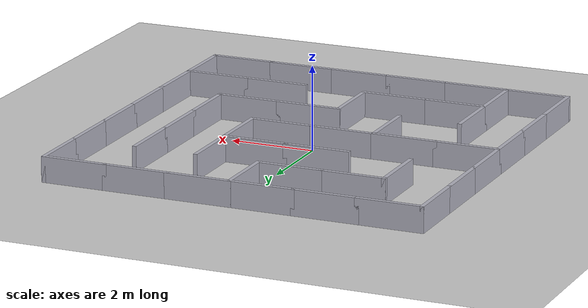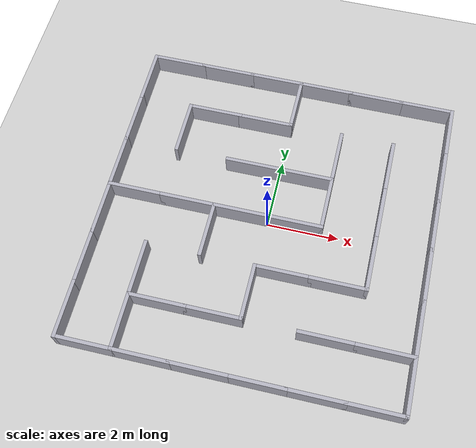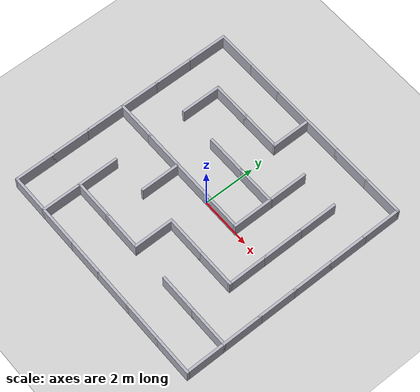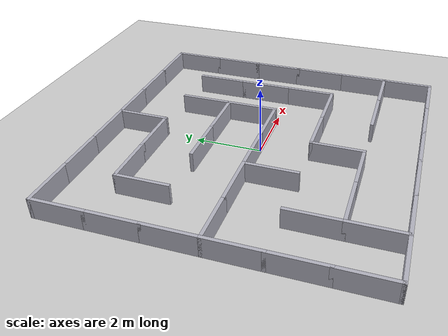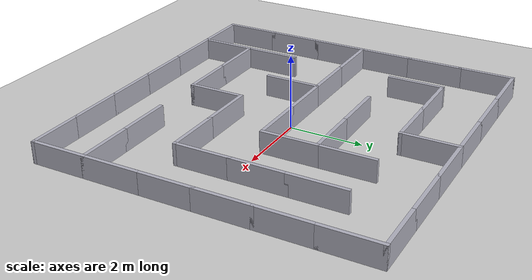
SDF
<?xml version="1.0" ?>
<sdf version="1.10">
  <world name="maze1">

    <!-- Системные плагины gz sim. Без Physics мир стоит на месте,
         без SceneBroadcaster gz gui показывает пустоту,
         без Sensors лидар не выдаёт /scan, без Imu — /imu. -->
    <plugin filename="gz-sim-physics-system"
            name="gz::sim::systems::Physics"/>
    <plugin filename="gz-sim-user-commands-system"
            name="gz::sim::systems::UserCommands"/>
    <plugin filename="gz-sim-scene-broadcaster-system"
            name="gz::sim::systems::SceneBroadcaster"/>
    <plugin filename="gz-sim-sensors-system"
            name="gz::sim::systems::Sensors">
      <render_engine>ogre2</render_engine>
    </plugin>
    <plugin filename="gz-sim-imu-system"
            name="gz::sim::systems::Imu"/>

    <physics name="default_physics" type="ode">
      <real_time_update_rate>1000.0</real_time_update_rate>
      <max_step_size>0.001</max_step_size>
      <real_time_factor>1.0</real_time_factor>
    </physics>

    <light type="directional" name="sun">
      <cast_shadows>true</cast_shadows>
      <pose>0 0 10 0 0 0</pose>
      <diffuse>0.8 0.8 0.8 1</diffuse>
      <specular>0.2 0.2 0.2 1</specular>
      <attenuation>
        <range>1000</range>
        <constant>0.9</constant>
        <linear>0.01</linear>
        <quadratic>0.001</quadratic>
      </attenuation>
      <direction>-0.5 0.1 -0.9</direction>
    </light>

    <model name="ground_plane">
      <static>true</static>
      <link name="link">
        <collision name="collision">
          <geometry><plane><normal>0 0 1</normal><size>100 100</size></plane></geometry>
        </collision>
        <visual name="visual">
          <geometry><plane><normal>0 0 1</normal><size>100 100</size></plane></geometry>
          <material>
            <ambient>0.8 0.8 0.8 1</ambient>
            <diffuse>0.8 0.8 0.8 1</diffuse>
            <specular>0.8 0.8 0.8 1</specular>
          </material>
        </visual>
      </link>
    </model>

    <model name="maze">
      <static>true</static>
      <link name="walls">
        <collision name="c0">
          <pose>-4.500 -3.750 0.300 0 0 1.5707963</pose>
          <geometry><box><size>1.600 0.100 0.600</size></box></geometry>
        </collision>
        <visual name="v0">
          <pose>-4.500 -3.750 0.300 0 0 1.5707963</pose>
          <geometry><box><size>1.600 0.100 0.600</size></box></geometry>
          <material>
            <ambient>0.5 0.5 0.55 1</ambient>
            <diffuse>0.7 0.7 0.75 1</diffuse>
          </material>
        </visual>
        <collision name="c1">
          <pose>-3.000 -3.750 0.300 0 0 1.5707963</pose>
          <geometry><box><size>1.600 0.100 0.600</size></box></geometry>
        </collision>
        <visual name="v1">
          <pose>-3.000 -3.750 0.300 0 0 1.5707963</pose>
          <geometry><box><size>1.600 0.100 0.600</size></box></geometry>
          <material>
            <ambient>0.5 0.5 0.55 1</ambient>
            <diffuse>0.7 0.7 0.75 1</diffuse>
          </material>
        </visual>
        <collision name="c2">
          <pose>4.500 -3.750 0.300 0 0 1.5707963</pose>
          <geometry><box><size>1.600 0.100 0.600</size></box></geometry>
        </collision>
        <visual name="v2">
          <pose>4.500 -3.750 0.300 0 0 1.5707963</pose>
          <geometry><box><size>1.600 0.100 0.600</size></box></geometry>
          <material>
            <ambient>0.5 0.5 0.55 1</ambient>
            <diffuse>0.7 0.7 0.75 1</diffuse>
          </material>
        </visual>
        <collision name="c3">
          <pose>-4.500 -2.250 0.300 0 0 1.5707963</pose>
          <geometry><box><size>1.600 0.100 0.600</size></box></geometry>
        </collision>
        <visual name="v3">
          <pose>-4.500 -2.250 0.300 0 0 1.5707963</pose>
          <geometry><box><size>1.600 0.100 0.600</size></box></geometry>
          <material>
            <ambient>0.5 0.5 0.55 1</ambient>
            <diffuse>0.7 0.7 0.75 1</diffuse>
          </material>
        </visual>
        <collision name="c4">
          <pose>-3.000 -2.250 0.300 0 0 1.5707963</pose>
          <geometry><box><size>1.600 0.100 0.600</size></box></geometry>
        </collision>
        <visual name="v4">
          <pose>-3.000 -2.250 0.300 0 0 1.5707963</pose>
          <geometry><box><size>1.600 0.100 0.600</size></box></geometry>
          <material>
            <ambient>0.5 0.5 0.55 1</ambient>
            <diffuse>0.7 0.7 0.75 1</diffuse>
          </material>
        </visual>
        <collision name="c5">
          <pose>0.000 -2.250 0.300 0 0 1.5707963</pose>
          <geometry><box><size>1.600 0.100 0.600</size></box></geometry>
        </collision>
        <visual name="v5">
          <pose>0.000 -2.250 0.300 0 0 1.5707963</pose>
          <geometry><box><size>1.600 0.100 0.600</size></box></geometry>
          <material>
            <ambient>0.5 0.5 0.55 1</ambient>
            <diffuse>0.7 0.7 0.75 1</diffuse>
          </material>
        </visual>
        <collision name="c6">
          <pose>4.500 -2.250 0.300 0 0 1.5707963</pose>
          <geometry><box><size>1.600 0.100 0.600</size></box></geometry>
        </collision>
        <visual name="v6">
          <pose>4.500 -2.250 0.300 0 0 1.5707963</pose>
          <geometry><box><size>1.600 0.100 0.600</size></box></geometry>
          <material>
            <ambient>0.5 0.5 0.55 1</ambient>
            <diffuse>0.7 0.7 0.75 1</diffuse>
          </material>
        </visual>
        <collision name="c7">
          <pose>-4.500 -0.750 0.300 0 0 1.5707963</pose>
          <geometry><box><size>1.600 0.100 0.600</size></box></geometry>
        </collision>
        <visual name="v7">
          <pose>-4.500 -0.750 0.300 0 0 1.5707963</pose>
          <geometry><box><size>1.600 0.100 0.600</size></box></geometry>
          <material>
            <ambient>0.5 0.5 0.55 1</ambient>
            <diffuse>0.7 0.7 0.75 1</diffuse>
          </material>
        </visual>
        <collision name="c8">
          <pose>-1.500 -0.750 0.300 0 0 1.5707963</pose>
          <geometry><box><size>1.600 0.100 0.600</size></box></geometry>
        </collision>
        <visual name="v8">
          <pose>-1.500 -0.750 0.300 0 0 1.5707963</pose>
          <geometry><box><size>1.600 0.100 0.600</size></box></geometry>
          <material>
            <ambient>0.5 0.5 0.55 1</ambient>
            <diffuse>0.7 0.7 0.75 1</diffuse>
          </material>
        </visual>
        <collision name="c9">
          <pose>3.000 -0.750 0.300 0 0 1.5707963</pose>
          <geometry><box><size>1.600 0.100 0.600</size></box></geometry>
        </collision>
        <visual name="v9">
          <pose>3.000 -0.750 0.300 0 0 1.5707963</pose>
          <geometry><box><size>1.600 0.100 0.600</size></box></geometry>
          <material>
            <ambient>0.5 0.5 0.55 1</ambient>
            <diffuse>0.7 0.7 0.75 1</diffuse>
          </material>
        </visual>
        <collision name="c10">
          <pose>4.500 -0.750 0.300 0 0 1.5707963</pose>
          <geometry><box><size>1.600 0.100 0.600</size></box></geometry>
        </collision>
        <visual name="v10">
          <pose>4.500 -0.750 0.300 0 0 1.5707963</pose>
          <geometry><box><size>1.600 0.100 0.600</size></box></geometry>
          <material>
            <ambient>0.5 0.5 0.55 1</ambient>
            <diffuse>0.7 0.7 0.75 1</diffuse>
          </material>
        </visual>
        <collision name="c11">
          <pose>-4.500 0.750 0.300 0 0 1.5707963</pose>
          <geometry><box><size>1.600 0.100 0.600</size></box></geometry>
        </collision>
        <visual name="v11">
          <pose>-4.500 0.750 0.300 0 0 1.5707963</pose>
          <geometry><box><size>1.600 0.100 0.600</size></box></geometry>
          <material>
            <ambient>0.5 0.5 0.55 1</ambient>
            <diffuse>0.7 0.7 0.75 1</diffuse>
          </material>
        </visual>
        <collision name="c12">
          <pose>1.500 0.750 0.300 0 0 1.5707963</pose>
          <geometry><box><size>1.600 0.100 0.600</size></box></geometry>
        </collision>
        <visual name="v12">
          <pose>1.500 0.750 0.300 0 0 1.5707963</pose>
          <geometry><box><size>1.600 0.100 0.600</size></box></geometry>
          <material>
            <ambient>0.5 0.5 0.55 1</ambient>
            <diffuse>0.7 0.7 0.75 1</diffuse>
          </material>
        </visual>
        <collision name="c13">
          <pose>3.000 0.750 0.300 0 0 1.5707963</pose>
          <geometry><box><size>1.600 0.100 0.600</size></box></geometry>
        </collision>
        <visual name="v13">
          <pose>3.000 0.750 0.300 0 0 1.5707963</pose>
          <geometry><box><size>1.600 0.100 0.600</size></box></geometry>
          <material>
            <ambient>0.5 0.5 0.55 1</ambient>
            <diffuse>0.7 0.7 0.75 1</diffuse>
          </material>
        </visual>
        <collision name="c14">
          <pose>4.500 0.750 0.300 0 0 1.5707963</pose>
          <geometry><box><size>1.600 0.100 0.600</size></box></geometry>
        </collision>
        <visual name="v14">
          <pose>4.500 0.750 0.300 0 0 1.5707963</pose>
          <geometry><box><size>1.600 0.100 0.600</size></box></geometry>
          <material>
            <ambient>0.5 0.5 0.55 1</ambient>
            <diffuse>0.7 0.7 0.75 1</diffuse>
          </material>
        </visual>
        <collision name="c15">
          <pose>-4.500 2.250 0.300 0 0 1.5707963</pose>
          <geometry><box><size>1.600 0.100 0.600</size></box></geometry>
        </collision>
        <visual name="v15">
          <pose>-4.500 2.250 0.300 0 0 1.5707963</pose>
          <geometry><box><size>1.600 0.100 0.600</size></box></geometry>
          <material>
            <ambient>0.5 0.5 0.55 1</ambient>
            <diffuse>0.7 0.7 0.75 1</diffuse>
          </material>
        </visual>
        <collision name="c16">
          <pose>-3.000 2.250 0.300 0 0 1.5707963</pose>
          <geometry><box><size>1.600 0.100 0.600</size></box></geometry>
        </collision>
        <visual name="v16">
          <pose>-3.000 2.250 0.300 0 0 1.5707963</pose>
          <geometry><box><size>1.600 0.100 0.600</size></box></geometry>
          <material>
            <ambient>0.5 0.5 0.55 1</ambient>
            <diffuse>0.7 0.7 0.75 1</diffuse>
          </material>
        </visual>
        <collision name="c17">
          <pose>1.500 2.250 0.300 0 0 1.5707963</pose>
          <geometry><box><size>1.600 0.100 0.600</size></box></geometry>
        </collision>
        <visual name="v17">
          <pose>1.500 2.250 0.300 0 0 1.5707963</pose>
          <geometry><box><size>1.600 0.100 0.600</size></box></geometry>
          <material>
            <ambient>0.5 0.5 0.55 1</ambient>
            <diffuse>0.7 0.7 0.75 1</diffuse>
          </material>
        </visual>
        <collision name="c18">
          <pose>3.000 2.250 0.300 0 0 1.5707963</pose>
          <geometry><box><size>1.600 0.100 0.600</size></box></geometry>
        </collision>
        <visual name="v18">
          <pose>3.000 2.250 0.300 0 0 1.5707963</pose>
          <geometry><box><size>1.600 0.100 0.600</size></box></geometry>
          <material>
            <ambient>0.5 0.5 0.55 1</ambient>
            <diffuse>0.7 0.7 0.75 1</diffuse>
          </material>
        </visual>
        <collision name="c19">
          <pose>4.500 2.250 0.300 0 0 1.5707963</pose>
          <geometry><box><size>1.600 0.100 0.600</size></box></geometry>
        </collision>
        <visual name="v19">
          <pose>4.500 2.250 0.300 0 0 1.5707963</pose>
          <geometry><box><size>1.600 0.100 0.600</size></box></geometry>
          <material>
            <ambient>0.5 0.5 0.55 1</ambient>
            <diffuse>0.7 0.7 0.75 1</diffuse>
          </material>
        </visual>
        <collision name="c20">
          <pose>-4.500 3.750 0.300 0 0 1.5707963</pose>
          <geometry><box><size>1.600 0.100 0.600</size></box></geometry>
        </collision>
        <visual name="v20">
          <pose>-4.500 3.750 0.300 0 0 1.5707963</pose>
          <geometry><box><size>1.600 0.100 0.600</size></box></geometry>
          <material>
            <ambient>0.5 0.5 0.55 1</ambient>
            <diffuse>0.7 0.7 0.75 1</diffuse>
          </material>
        </visual>
        <collision name="c21">
          <pose>0.000 3.750 0.300 0 0 1.5707963</pose>
          <geometry><box><size>1.600 0.100 0.600</size></box></geometry>
        </collision>
        <visual name="v21">
          <pose>0.000 3.750 0.300 0 0 1.5707963</pose>
          <geometry><box><size>1.600 0.100 0.600</size></box></geometry>
          <material>
            <ambient>0.5 0.5 0.55 1</ambient>
            <diffuse>0.7 0.7 0.75 1</diffuse>
          </material>
        </visual>
        <collision name="c22">
          <pose>4.500 3.750 0.300 0 0 1.5707963</pose>
          <geometry><box><size>1.600 0.100 0.600</size></box></geometry>
        </collision>
        <visual name="v22">
          <pose>4.500 3.750 0.300 0 0 1.5707963</pose>
          <geometry><box><size>1.600 0.100 0.600</size></box></geometry>
          <material>
            <ambient>0.5 0.5 0.55 1</ambient>
            <diffuse>0.7 0.7 0.75 1</diffuse>
          </material>
        </visual>
        <collision name="c23">
          <pose>-3.750 -4.500 0.300 0 0 0.0000000</pose>
          <geometry><box><size>1.600 0.100 0.600</size></box></geometry>
        </collision>
        <visual name="v23">
          <pose>-3.750 -4.500 0.300 0 0 0.0000000</pose>
          <geometry><box><size>1.600 0.100 0.600</size></box></geometry>
          <material>
            <ambient>0.5 0.5 0.55 1</ambient>
            <diffuse>0.7 0.7 0.75 1</diffuse>
          </material>
        </visual>
        <collision name="c24">
          <pose>-2.250 -4.500 0.300 0 0 0.0000000</pose>
          <geometry><box><size>1.600 0.100 0.600</size></box></geometry>
        </collision>
        <visual name="v24">
          <pose>-2.250 -4.500 0.300 0 0 0.0000000</pose>
          <geometry><box><size>1.600 0.100 0.600</size></box></geometry>
          <material>
            <ambient>0.5 0.5 0.55 1</ambient>
            <diffuse>0.7 0.7 0.75 1</diffuse>
          </material>
        </visual>
        <collision name="c25">
          <pose>-0.750 -4.500 0.300 0 0 0.0000000</pose>
          <geometry><box><size>1.600 0.100 0.600</size></box></geometry>
        </collision>
        <visual name="v25">
          <pose>-0.750 -4.500 0.300 0 0 0.0000000</pose>
          <geometry><box><size>1.600 0.100 0.600</size></box></geometry>
          <material>
            <ambient>0.5 0.5 0.55 1</ambient>
            <diffuse>0.7 0.7 0.75 1</diffuse>
          </material>
        </visual>
        <collision name="c26">
          <pose>0.750 -4.500 0.300 0 0 0.0000000</pose>
          <geometry><box><size>1.600 0.100 0.600</size></box></geometry>
        </collision>
        <visual name="v26">
          <pose>0.750 -4.500 0.300 0 0 0.0000000</pose>
          <geometry><box><size>1.600 0.100 0.600</size></box></geometry>
          <material>
            <ambient>0.5 0.5 0.55 1</ambient>
            <diffuse>0.7 0.7 0.75 1</diffuse>
          </material>
        </visual>
        <collision name="c27">
          <pose>2.250 -4.500 0.300 0 0 0.0000000</pose>
          <geometry><box><size>1.600 0.100 0.600</size></box></geometry>
        </collision>
        <visual name="v27">
          <pose>2.250 -4.500 0.300 0 0 0.0000000</pose>
          <geometry><box><size>1.600 0.100 0.600</size></box></geometry>
          <material>
            <ambient>0.5 0.5 0.55 1</ambient>
            <diffuse>0.7 0.7 0.75 1</diffuse>
          </material>
        </visual>
        <collision name="c28">
          <pose>3.750 -4.500 0.300 0 0 0.0000000</pose>
          <geometry><box><size>1.600 0.100 0.600</size></box></geometry>
        </collision>
        <visual name="v28">
          <pose>3.750 -4.500 0.300 0 0 0.0000000</pose>
          <geometry><box><size>1.600 0.100 0.600</size></box></geometry>
          <material>
            <ambient>0.5 0.5 0.55 1</ambient>
            <diffuse>0.7 0.7 0.75 1</diffuse>
          </material>
        </visual>
        <collision name="c29">
          <pose>-2.250 -3.000 0.300 0 0 0.0000000</pose>
          <geometry><box><size>1.600 0.100 0.600</size></box></geometry>
        </collision>
        <visual name="v29">
          <pose>-2.250 -3.000 0.300 0 0 0.0000000</pose>
          <geometry><box><size>1.600 0.100 0.600</size></box></geometry>
          <material>
            <ambient>0.5 0.5 0.55 1</ambient>
            <diffuse>0.7 0.7 0.75 1</diffuse>
          </material>
        </visual>
        <collision name="c30">
          <pose>-0.750 -3.000 0.300 0 0 0.0000000</pose>
          <geometry><box><size>1.600 0.100 0.600</size></box></geometry>
        </collision>
        <visual name="v30">
          <pose>-0.750 -3.000 0.300 0 0 0.0000000</pose>
          <geometry><box><size>1.600 0.100 0.600</size></box></geometry>
          <material>
            <ambient>0.5 0.5 0.55 1</ambient>
            <diffuse>0.7 0.7 0.75 1</diffuse>
          </material>
        </visual>
        <collision name="c31">
          <pose>2.250 -3.000 0.300 0 0 0.0000000</pose>
          <geometry><box><size>1.600 0.100 0.600</size></box></geometry>
        </collision>
        <visual name="v31">
          <pose>2.250 -3.000 0.300 0 0 0.0000000</pose>
          <geometry><box><size>1.600 0.100 0.600</size></box></geometry>
          <material>
            <ambient>0.5 0.5 0.55 1</ambient>
            <diffuse>0.7 0.7 0.75 1</diffuse>
          </material>
        </visual>
        <collision name="c32">
          <pose>3.750 -3.000 0.300 0 0 0.0000000</pose>
          <geometry><box><size>1.600 0.100 0.600</size></box></geometry>
        </collision>
        <visual name="v32">
          <pose>3.750 -3.000 0.300 0 0 0.0000000</pose>
          <geometry><box><size>1.600 0.100 0.600</size></box></geometry>
          <material>
            <ambient>0.5 0.5 0.55 1</ambient>
            <diffuse>0.7 0.7 0.75 1</diffuse>
          </material>
        </visual>
        <collision name="c33">
          <pose>0.750 -1.500 0.300 0 0 0.0000000</pose>
          <geometry><box><size>1.600 0.100 0.600</size></box></geometry>
        </collision>
        <visual name="v33">
          <pose>0.750 -1.500 0.300 0 0 0.0000000</pose>
          <geometry><box><size>1.600 0.100 0.600</size></box></geometry>
          <material>
            <ambient>0.5 0.5 0.55 1</ambient>
            <diffuse>0.7 0.7 0.75 1</diffuse>
          </material>
        </visual>
        <collision name="c34">
          <pose>2.250 -1.500 0.300 0 0 0.0000000</pose>
          <geometry><box><size>1.600 0.100 0.600</size></box></geometry>
        </collision>
        <visual name="v34">
          <pose>2.250 -1.500 0.300 0 0 0.0000000</pose>
          <geometry><box><size>1.600 0.100 0.600</size></box></geometry>
          <material>
            <ambient>0.5 0.5 0.55 1</ambient>
            <diffuse>0.7 0.7 0.75 1</diffuse>
          </material>
        </visual>
        <collision name="c35">
          <pose>-3.750 0.000 0.300 0 0 0.0000000</pose>
          <geometry><box><size>1.600 0.100 0.600</size></box></geometry>
        </collision>
        <visual name="v35">
          <pose>-3.750 0.000 0.300 0 0 0.0000000</pose>
          <geometry><box><size>1.600 0.100 0.600</size></box></geometry>
          <material>
            <ambient>0.5 0.5 0.55 1</ambient>
            <diffuse>0.7 0.7 0.75 1</diffuse>
          </material>
        </visual>
        <collision name="c36">
          <pose>-2.250 0.000 0.300 0 0 0.0000000</pose>
          <geometry><box><size>1.600 0.100 0.600</size></box></geometry>
        </collision>
        <visual name="v36">
          <pose>-2.250 0.000 0.300 0 0 0.0000000</pose>
          <geometry><box><size>1.600 0.100 0.600</size></box></geometry>
          <material>
            <ambient>0.5 0.5 0.55 1</ambient>
            <diffuse>0.7 0.7 0.75 1</diffuse>
          </material>
        </visual>
        <collision name="c37">
          <pose>-0.750 0.000 0.300 0 0 0.0000000</pose>
          <geometry><box><size>1.600 0.100 0.600</size></box></geometry>
        </collision>
        <visual name="v37">
          <pose>-0.750 0.000 0.300 0 0 0.0000000</pose>
          <geometry><box><size>1.600 0.100 0.600</size></box></geometry>
          <material>
            <ambient>0.5 0.5 0.55 1</ambient>
            <diffuse>0.7 0.7 0.75 1</diffuse>
          </material>
        </visual>
        <collision name="c38">
          <pose>0.750 0.000 0.300 0 0 0.0000000</pose>
          <geometry><box><size>1.600 0.100 0.600</size></box></geometry>
        </collision>
        <visual name="v38">
          <pose>0.750 0.000 0.300 0 0 0.0000000</pose>
          <geometry><box><size>1.600 0.100 0.600</size></box></geometry>
          <material>
            <ambient>0.5 0.5 0.55 1</ambient>
            <diffuse>0.7 0.7 0.75 1</diffuse>
          </material>
        </visual>
        <collision name="c39">
          <pose>-0.750 1.500 0.300 0 0 0.0000000</pose>
          <geometry><box><size>1.600 0.100 0.600</size></box></geometry>
        </collision>
        <visual name="v39">
          <pose>-0.750 1.500 0.300 0 0 0.0000000</pose>
          <geometry><box><size>1.600 0.100 0.600</size></box></geometry>
          <material>
            <ambient>0.5 0.5 0.55 1</ambient>
            <diffuse>0.7 0.7 0.75 1</diffuse>
          </material>
        </visual>
        <collision name="c40">
          <pose>0.750 1.500 0.300 0 0 0.0000000</pose>
          <geometry><box><size>1.600 0.100 0.600</size></box></geometry>
        </collision>
        <visual name="v40">
          <pose>0.750 1.500 0.300 0 0 0.0000000</pose>
          <geometry><box><size>1.600 0.100 0.600</size></box></geometry>
          <material>
            <ambient>0.5 0.5 0.55 1</ambient>
            <diffuse>0.7 0.7 0.75 1</diffuse>
          </material>
        </visual>
        <collision name="c41">
          <pose>-2.250 3.000 0.300 0 0 0.0000000</pose>
          <geometry><box><size>1.600 0.100 0.600</size></box></geometry>
        </collision>
        <visual name="v41">
          <pose>-2.250 3.000 0.300 0 0 0.0000000</pose>
          <geometry><box><size>1.600 0.100 0.600</size></box></geometry>
          <material>
            <ambient>0.5 0.5 0.55 1</ambient>
            <diffuse>0.7 0.7 0.75 1</diffuse>
          </material>
        </visual>
        <collision name="c42">
          <pose>-0.750 3.000 0.300 0 0 0.0000000</pose>
          <geometry><box><size>1.600 0.100 0.600</size></box></geometry>
        </collision>
        <visual name="v42">
          <pose>-0.750 3.000 0.300 0 0 0.0000000</pose>
          <geometry><box><size>1.600 0.100 0.600</size></box></geometry>
          <material>
            <ambient>0.5 0.5 0.55 1</ambient>
            <diffuse>0.7 0.7 0.75 1</diffuse>
          </material>
        </visual>
        <collision name="c43">
          <pose>-3.750 4.500 0.300 0 0 0.0000000</pose>
          <geometry><box><size>1.600 0.100 0.600</size></box></geometry>
        </collision>
        <visual name="v43">
          <pose>-3.750 4.500 0.300 0 0 0.0000000</pose>
          <geometry><box><size>1.600 0.100 0.600</size></box></geometry>
          <material>
            <ambient>0.5 0.5 0.55 1</ambient>
            <diffuse>0.7 0.7 0.75 1</diffuse>
          </material>
        </visual>
        <collision name="c44">
          <pose>-2.250 4.500 0.300 0 0 0.0000000</pose>
          <geometry><box><size>1.600 0.100 0.600</size></box></geometry>
        </collision>
        <visual name="v44">
          <pose>-2.250 4.500 0.300 0 0 0.0000000</pose>
          <geometry><box><size>1.600 0.100 0.600</size></box></geometry>
          <material>
            <ambient>0.5 0.5 0.55 1</ambient>
            <diffuse>0.7 0.7 0.75 1</diffuse>
          </material>
        </visual>
        <collision name="c45">
          <pose>-0.750 4.500 0.300 0 0 0.0000000</pose>
          <geometry><box><size>1.600 0.100 0.600</size></box></geometry>
        </collision>
        <visual name="v45">
          <pose>-0.750 4.500 0.300 0 0 0.0000000</pose>
          <geometry><box><size>1.600 0.100 0.600</size></box></geometry>
          <material>
            <ambient>0.5 0.5 0.55 1</ambient>
            <diffuse>0.7 0.7 0.75 1</diffuse>
          </material>
        </visual>
        <collision name="c46">
          <pose>0.750 4.500 0.300 0 0 0.0000000</pose>
          <geometry><box><size>1.600 0.100 0.600</size></box></geometry>
        </collision>
        <visual name="v46">
          <pose>0.750 4.500 0.300 0 0 0.0000000</pose>
          <geometry><box><size>1.600 0.100 0.600</size></box></geometry>
          <material>
            <ambient>0.5 0.5 0.55 1</ambient>
            <diffuse>0.7 0.7 0.75 1</diffuse>
          </material>
        </visual>
        <collision name="c47">
          <pose>2.250 4.500 0.300 0 0 0.0000000</pose>
          <geometry><box><size>1.600 0.100 0.600</size></box></geometry>
        </collision>
        <visual name="v47">
          <pose>2.250 4.500 0.300 0 0 0.0000000</pose>
          <geometry><box><size>1.600 0.100 0.600</size></box></geometry>
          <material>
            <ambient>0.5 0.5 0.55 1</ambient>
            <diffuse>0.7 0.7 0.75 1</diffuse>
          </material>
        </visual>
        <collision name="c48">
          <pose>3.750 4.500 0.300 0 0 0.0000000</pose>
          <geometry><box><size>1.600 0.100 0.600</size></box></geometry>
        </collision>
        <visual name="v48">
          <pose>3.750 4.500 0.300 0 0 0.0000000</pose>
          <geometry><box><size>1.600 0.100 0.600</size></box></geometry>
          <material>
            <ambient>0.5 0.5 0.55 1</ambient>
            <diffuse>0.7 0.7 0.75 1</diffuse>
          </material>
        </visual>
      </link>
    </model>
  </world>
</sdf>
